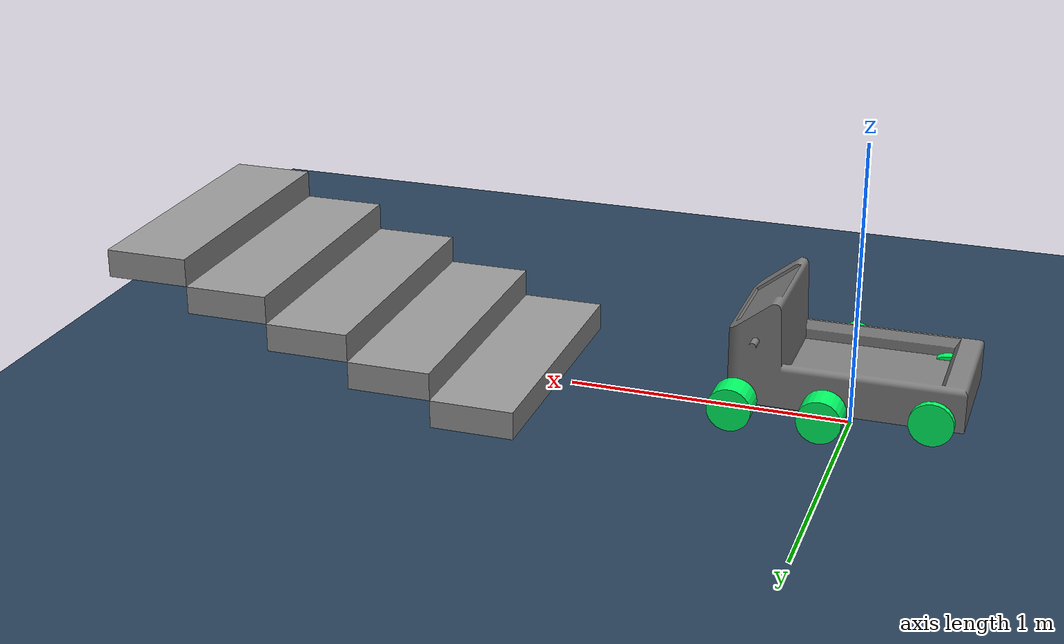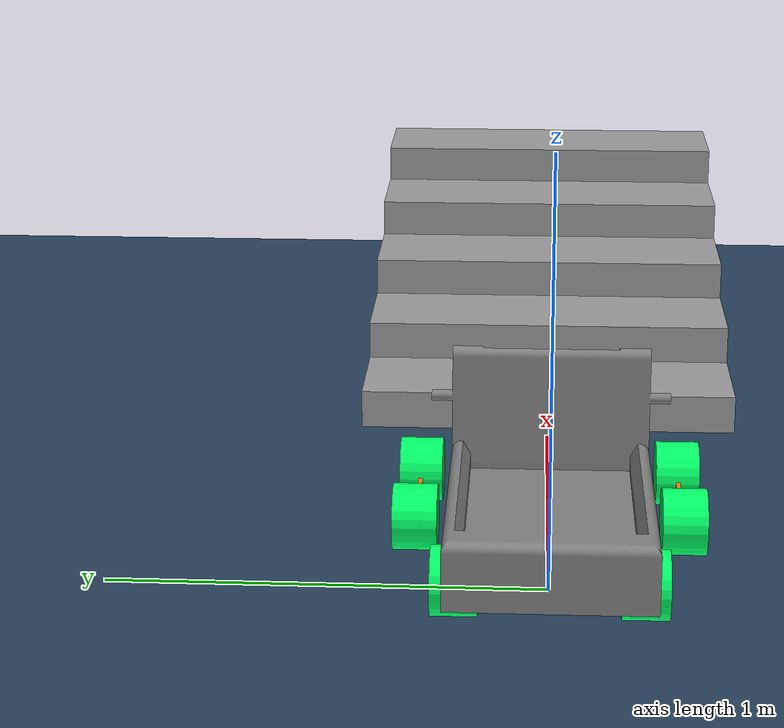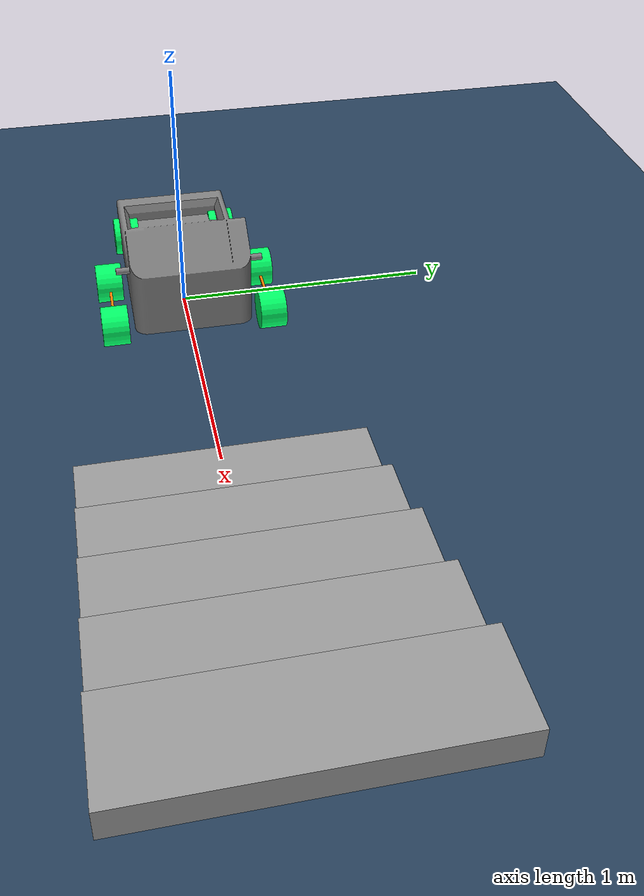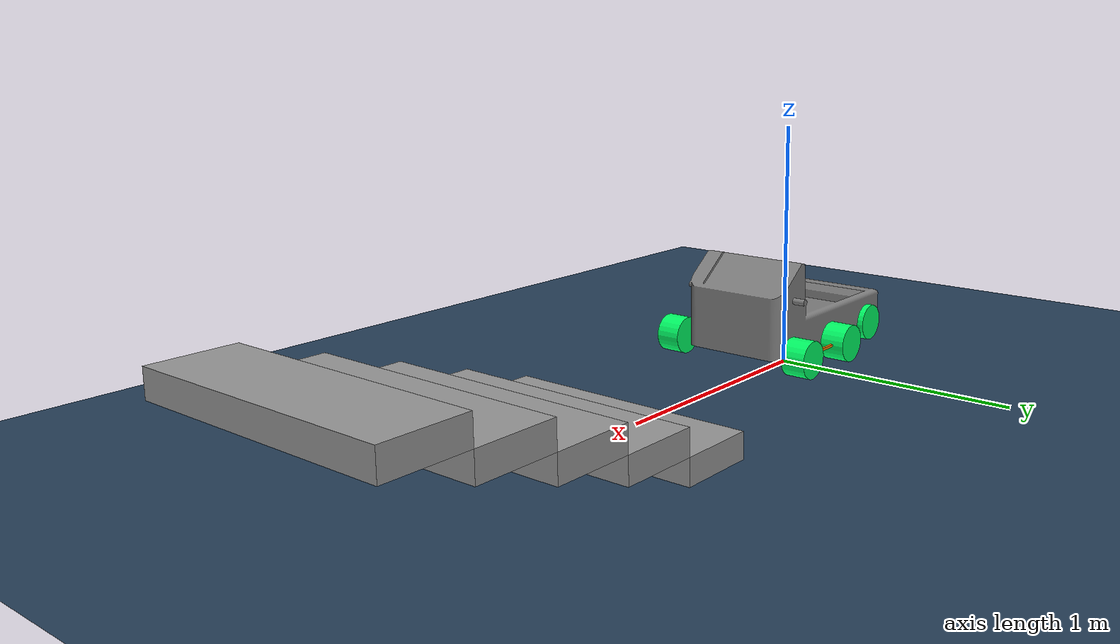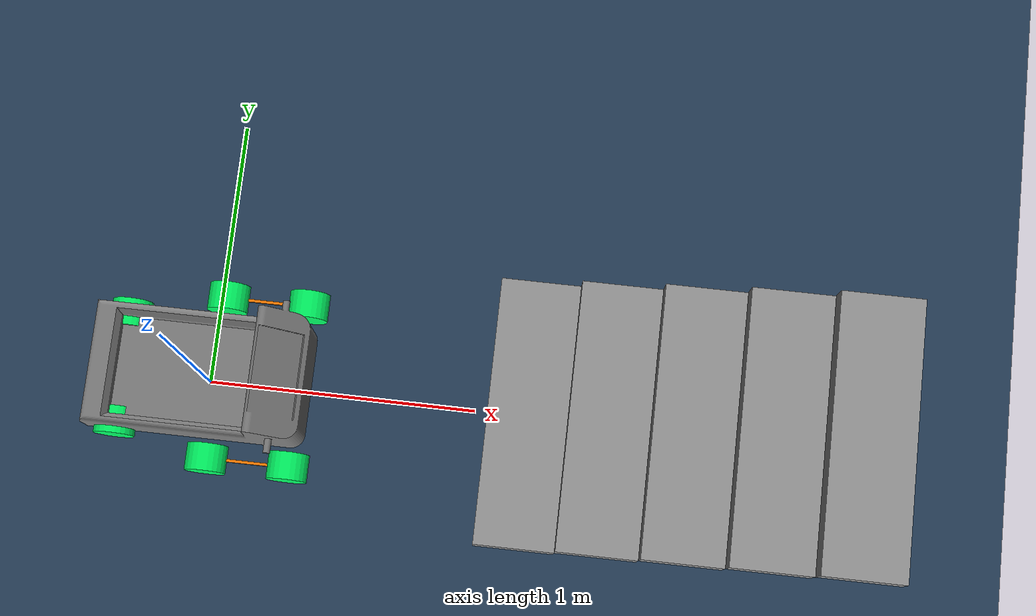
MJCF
<mujoco model="RAY_Bogie_Robot">
  <compiler autolimits="true"/>

  <asset>
    <texture name="grid" type="2d" builtin="checker" width="512" height="512" rgb1=".1 .2 .3" rgb2=".2 .3 .4"/>
    <material name="grid" texture="grid" texrepeat="1 1" texuniform="true" reflectance=".2"/>
    <mesh name="chassis" file="assets/chassis.stl" scale="0.001 0.001 0.001"/>
  </asset>

  <default>
    <joint damping=".5" actuatorfrcrange="-50 50"/>
    <default class="wheel">
      <geom type="cylinder" size=".075 .05" rgba="0 1 .4 1" euler="90 0 0" condim="3" friction="1.5 0.005 0.0001"/>
      <joint type="hinge" axis="0 1 0"/>
    </default>
    <default class="bogie_beam">
       <geom type="box" size=".15 .005 .005" rgba="1 .5 0 1"/>
    </default>
  </default>

  <worldbody>
    <geom type="plane" size="3 3 .01" material="grid"/>
    <light name="top light" pos="0 0 2" mode="trackcom" diffuse=".4 .4 .4"/>

    <body name="car" pos="0 0 .15">
      <freejoint/>

      <inertial pos="0 0 0" mass="10" diaginertia="0.5 0.5 0.8"/>

      <geom name="chassis_geom" type="mesh" mesh="chassis" pos="-0.405 0.275 -0.05" euler="90 0 0" density="0"/>
      <light name="front light" pos=".1 0 .02" dir="2 0 -1" diffuse="1 1 1"/>

      <body name="left_bogie" pos="0.2 .3 0">
        <joint name="climb_L" axis="0 1 0" damping="2.0"/>
        <geom class="bogie_beam"/>

        <body name="left_wheel_front" pos=".15 0 0">
             <joint name="L1" class="wheel"/>
             <geom class="wheel"/>
        </body>
        <body name="left_wheel_mid" pos="-.15 0 0">
             <joint name="L2" class="wheel"/>
             <geom class="wheel"/>
        </body>
      </body>

      <body name="left_wheel_rear" pos="-0.3 0.2 0">
        <joint name="L3" class="wheel"/>
        <geom class="wheel"/>
      </body>

      <body name="right_bogie" pos="0.2 -.3 0">
        <joint name="climb_R" axis="0 1 0" damping="2.0"/>
        <geom class="bogie_beam"/>

        <body name="right_wheel_front" pos=".15 0 0">
            <joint name="R1" class="wheel"/>
            <geom class="wheel"/>
        </body>
        <body name="right_wheel_mid" pos="-.15 0 0">
            <joint name="R2" class="wheel"/>
            <geom class="wheel"/>
        </body>
      </body>

      <body name="right_wheel_rear" pos="-0.3 -.2 0">
        <joint name="R3" class="wheel"/>
        <geom class="wheel"/>
      </body>

    </body>
  <!-- Staircase placed 1.2 m in front of chassis -->
    <body name="stairs" pos="1.2 0 0">
      <!-- step dims: full width 1.0m (half-size 0.5), depth 0.3m (half 0.15), height 0.1m (half 0.05) -->
      <geom type="box" name="step1" size="0.15 0.5 0.05" pos="0 0.00 0.05" rgba="0.6 0.6 0.6 1"/>
      <geom type="box" name="step2" size="0.15 0.5 0.05" pos="0.30 0 0.15" rgba="0.6 0.6 0.6 1"/>
      <geom type="box" name="step3" size="0.15 0.5 0.05" pos="0.60 0 0.25" rgba="0.6 0.6 0.6 1"/>
      <geom type="box" name="step4" size="0.15 0.5 0.05" pos="0.90 0 0.35" rgba="0.6 0.6 0.6 1"/>
      <geom type="box" name="step5" size="0.15 0.5 0.05" pos="1.20 0 0.45" rgba="0.6 0.6 0.6 1"/>
    </body>

  </worldbody>

  <tendon>
    <fixed name="forward">
      <joint joint="L1" coef="0.5"/> <joint joint="L2" coef="0.5"/> <joint joint="L3" coef="0.5"/>
      <joint joint="R1" coef="0.5"/> <joint joint="R2" coef="0.5"/> <joint joint="R3" coef="0.5"/>
    </fixed>
    <fixed name="turn">
      <joint joint="L1" coef="-0.5"/> <joint joint="L2" coef="-0.5"/> <joint joint="L3" coef="-0.5"/>
      <joint joint="R1" coef="0.5"/>  <joint joint="R2" coef="0.5"/>  <joint joint="R3" coef="0.5"/>
    </fixed>
    <fixed name="climb_sync">
      <joint joint="climb_L" coef="1"/>
      <joint joint="climb_R" coef="1"/>
    </fixed>
  </tendon>

  <actuator>
    <motor name="drive_forward" tendon="forward" ctrlrange="-1 1" gear="30"/>
    <motor name="drive_turn" tendon="turn" ctrlrange="-1 1" gear="30"/>
    <motor name="actuator_climb" tendon="climb_sync" ctrlrange="-3 3" gear="50"/>
  </actuator>

</mujoco>
